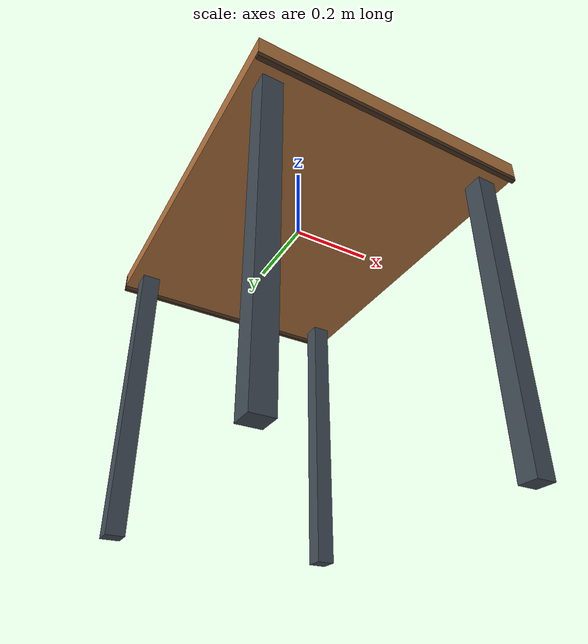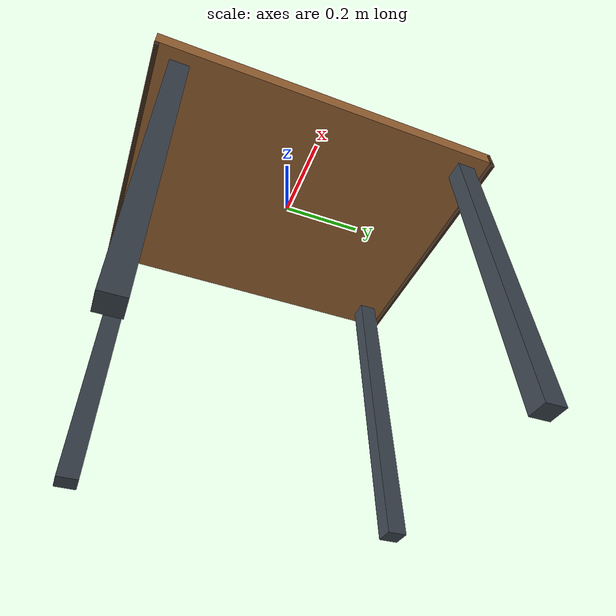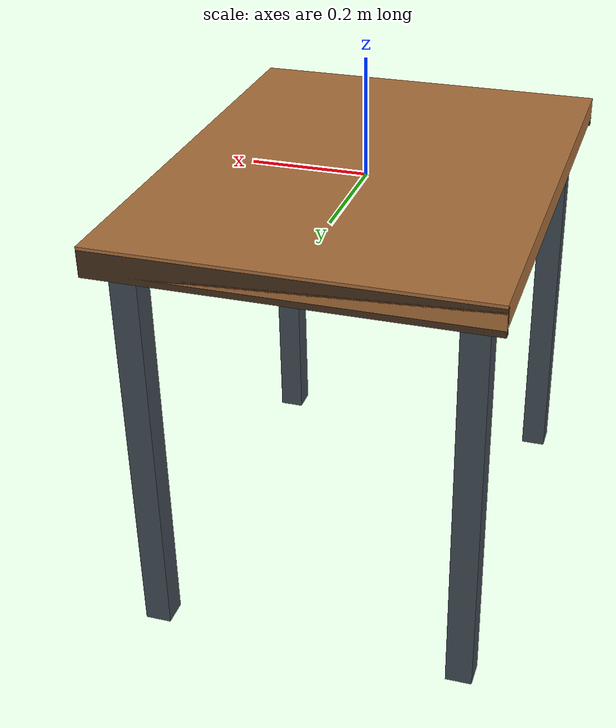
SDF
<sdf version="1.6"><model name="ur3_task_table"><static>true</static><link name="link"><visual name="top"><pose>0.000000 0.000000 0.000000 0 0 0.000000</pose><geometry><box><size>0.640000 0.840000 0.040000</size></box></geometry><material><ambient>0.495 0.3225 0.17250000000000001 1</ambient><diffuse>0.66 0.43 0.23 1</diffuse><emissive>0.05280000000000001 0.0344 0.0184 1</emissive><specular>0.12 0.12 0.12 1</specular></material></visual><visual name="front_edge"><pose>0.000000 -0.415000 -0.008000 0 0 0.000000</pose><geometry><box><size>0.640000 0.010000 0.045000</size></box></geometry><material><ambient>0.2025 0.135 0.0825 1</ambient><diffuse>0.27 0.18 0.11 1</diffuse><emissive>0.0216 0.0144 0.0088 1</emissive><specular>0.12 0.12 0.12 1</specular></material></visual><visual name="back_edge"><pose>0.000000 0.415000 -0.008000 0 0 0.000000</pose><geometry><box><size>0.640000 0.010000 0.045000</size></box></geometry><material><ambient>0.2025 0.135 0.0825 1</ambient><diffuse>0.27 0.18 0.11 1</diffuse><emissive>0.0216 0.0144 0.0088 1</emissive><specular>0.12 0.12 0.12 1</specular></material></visual><visual name="leg_-0.27_-0.36"><pose>-0.270000 -0.360000 -0.370000 0 0 0.000000</pose><geometry><box><size>0.045000 0.045000 0.700000</size></box></geometry><material><ambient>0.18 0.21000000000000002 0.24 1</ambient><diffuse>0.24 0.28 0.32 1</diffuse><emissive>0.0192 0.022400000000000003 0.0256 1</emissive><specular>0.12 0.12 0.12 1</specular></material></visual><visual name="leg_-0.27_0.36"><pose>-0.270000 0.360000 -0.370000 0 0 0.000000</pose><geometry><box><size>0.045000 0.045000 0.700000</size></box></geometry><material><ambient>0.18 0.21000000000000002 0.24 1</ambient><diffuse>0.24 0.28 0.32 1</diffuse><emissive>0.0192 0.022400000000000003 0.0256 1</emissive><specular>0.12 0.12 0.12 1</specular></material></visual><visual name="leg_0.27_-0.36"><pose>0.270000 -0.360000 -0.370000 0 0 0.000000</pose><geometry><box><size>0.045000 0.045000 0.700000</size></box></geometry><material><ambient>0.18 0.21000000000000002 0.24 1</ambient><diffuse>0.24 0.28 0.32 1</diffuse><emissive>0.0192 0.022400000000000003 0.0256 1</emissive><specular>0.12 0.12 0.12 1</specular></material></visual><visual name="leg_0.27_0.36"><pose>0.270000 0.360000 -0.370000 0 0 0.000000</pose><geometry><box><size>0.045000 0.045000 0.700000</size></box></geometry><material><ambient>0.18 0.21000000000000002 0.24 1</ambient><diffuse>0.24 0.28 0.32 1</diffuse><emissive>0.0192 0.022400000000000003 0.0256 1</emissive><specular>0.12 0.12 0.12 1</specular></material></visual><collision name="top_collision"><pose>0.000000 0.000000 0.000000 0 0 0.000000</pose><geometry><box><size>0.640000 0.840000 0.040000</size></box></geometry></collision></link></model></sdf>
